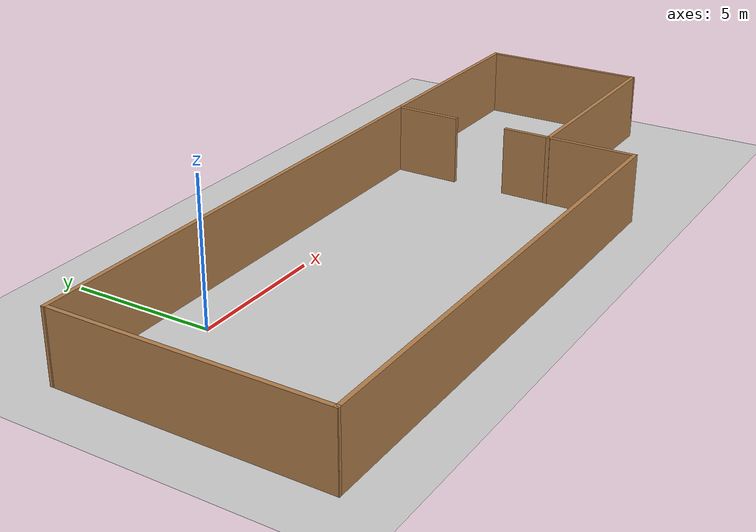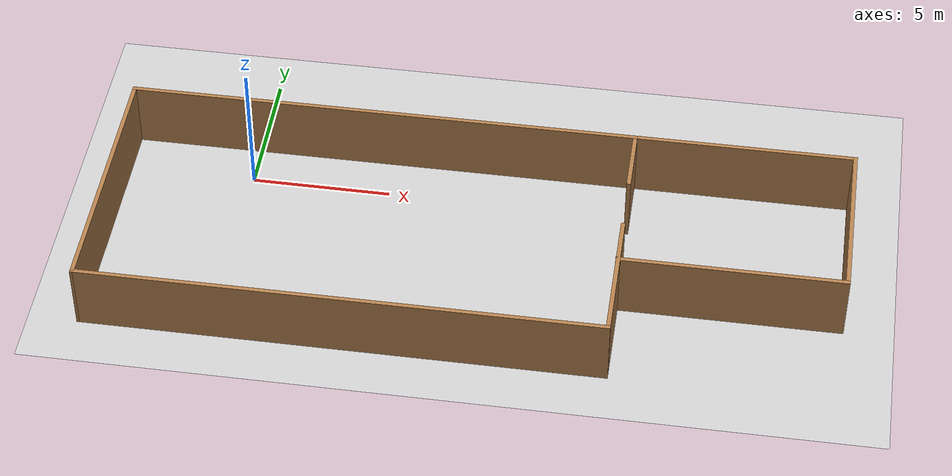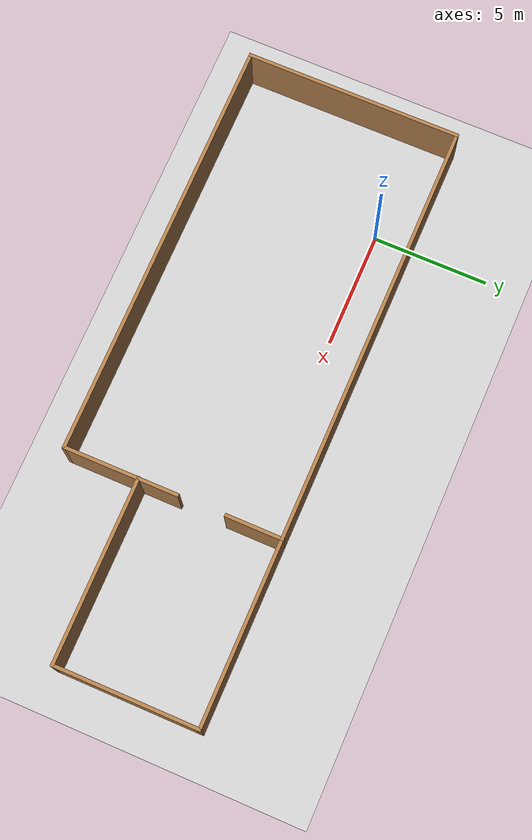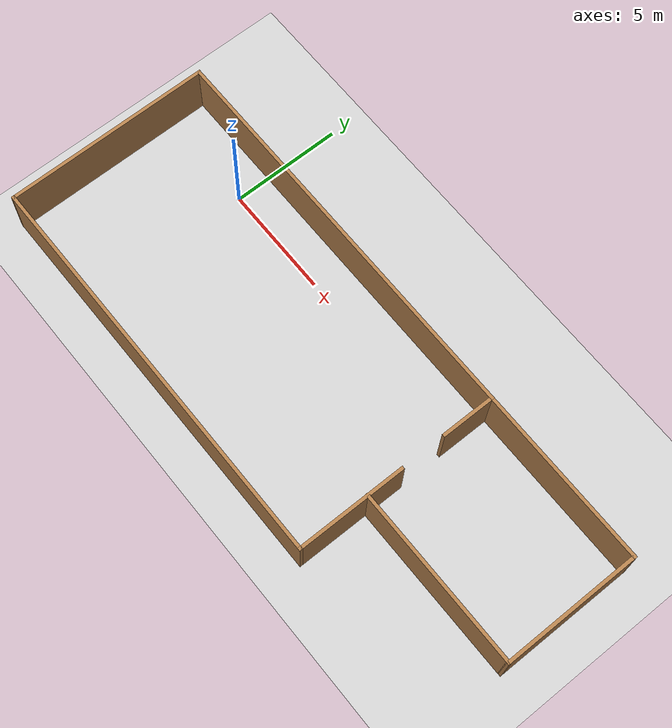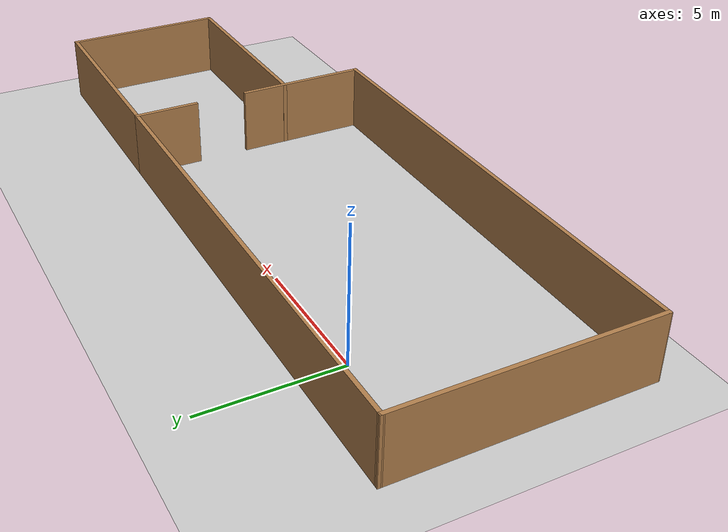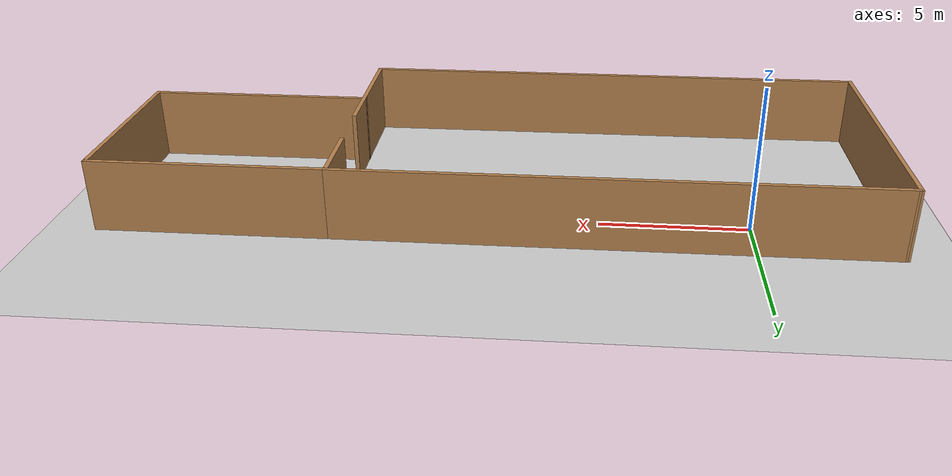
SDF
<sdf version="1.7">
 <world name="default">
  <light name="sun" type="directional">
   <pose>0 0 10 0 -0 0</pose>
   <diffuse>0.8 0.8 0.8 1</diffuse>
   <specular>0.2 0.2 0.2 1</specular>
   <attenuation>
    <range>1000</range>
    <constant>0.9</constant>
    <linear>0.01</linear>
    <quadratic>0.001</quadratic>
   </attenuation>
   <direction>-0.5 0.1 -0.9</direction>
   <spot><inner_angle>0</inner_angle><outer_angle>0</outer_angle><falloff>0</falloff></spot>
  </light>
  <model name="ground_plane">
   <static>1</static>
   <link name="link">
    <collision name="collision">
     <geometry><plane><normal>0 0 1</normal><size>100 100</size></plane></geometry>
     <surface>
      <contact><collide_bitmask>65535</collide_bitmask></contact>
      <friction><ode><mu>100</mu><mu2>50</mu2></ode></friction>
     </surface>
    </collision>
    <visual name="visual">
     <cast_shadows>0</cast_shadows>
     <geometry><plane><normal>0 0 1</normal><size>100 100</size></plane></geometry>
     <material>
      <script><uri>file://media/materials/scripts/gazebo.material</uri><name>Gazebo/Grey</name></script>
     </material>
    </visual>
   </link>
  </model>
  <gravity>0 0 -9.8</gravity>
  <magnetic_field>6e-06 2.3e-05 -4.2e-05</magnetic_field>
  <atmosphere type="adiabatic"/>
  <physics type="ode">
   <max_step_size>0.001</max_step_size>
   <real_time_factor>1</real_time_factor>
   <real_time_update_rate>1000</real_time_update_rate>
  </physics>
  <scene><ambient>0.4 0.4 0.4 1</ambient><background>0.7 0.7 0.7 1</background><shadows>1</shadows></scene>
  <spherical_coordinates>
   <surface_model>EARTH_WGS84</surface_model>
   <latitude_deg>0</latitude_deg>
   <longitude_deg>0</longitude_deg>
   <elevation>0</elevation>
   <heading_deg>0</heading_deg>
  </spherical_coordinates>
  <model name="ramon_world">
   <pose>8.46506 -2.88326 0 0 -0 0</pose>
   <link name="Wall_12">
    <collision name="Wall_12_Collision">
     <geometry><box><size>5 0.15 2.5</size></box></geometry>
     <pose>0 0 1.25 0 -0 0</pose>
    </collision>
    <visual name="Wall_12_Visual">
     <pose>0 0 1.25 0 -0 0</pose>
     <geometry><box><size>5 0.15 2.5</size></box></geometry>
     <material>
      <script><uri>file://media/materials/scripts/gazebo.material</uri><name>Gazebo/Wood</name></script>
      <ambient>1 1 1 1</ambient>
     </material>
     <meta><layer>0</layer></meta>
    </visual>
    <pose>5.26004 -2.38318 0 0 -0 -1.5708</pose>
   </link>
   <link name="Wall_13">
    <collision name="Wall_13_Collision">
     <geometry><box><size>18.5 0.15 2.5</size></box></geometry>
     <pose>0 0 1.25 0 -0 0</pose>
    </collision>
    <visual name="Wall_13_Visual">
     <pose>0 0 1.25 0 -0 0</pose>
     <geometry><box><size>18.5 0.15 2.5</size></box></geometry>
     <material>
      <script><uri>file://media/materials/scripts/gazebo.material</uri><name>Gazebo/Wood</name></script>
      <ambient>1 1 1 1</ambient>
     </material>
     <meta><layer>0</layer></meta>
    </visual>
    <pose>-3.91496 -4.80818 0 0 -0 3.14159</pose>
   </link>
   <link name="Wall_14">
    <collision name="Wall_14_Collision">
     <geometry><box><size>9.45001 0.15 2.5</size></box></geometry>
     <pose>0 0 1.25 0 -0 0</pose>
    </collision>
    <visual name="Wall_14_Visual">
     <pose>0 0 1.25 0 -0 0</pose>
     <geometry><box><size>9.45001 0.15 2.5</size></box></geometry>
     <material>
      <script><uri>file://media/materials/scripts/gazebo.material</uri><name>Gazebo/Wood</name></script>
      <ambient>1 1 1 1</ambient>
     </material>
     <meta><layer>0</layer></meta>
    </visual>
    <pose>-13.095 -0.158175 0 0 -0 1.57187</pose>
   </link>
   <link name="Wall_16">
    <collision name="Wall_16_Collision">
     <geometry><box><size>8 0.15 2.5</size></box></geometry>
     <pose>0 0 1.25 0 -0 0</pose>
    </collision>
    <visual name="Wall_16_Visual">
     <pose>0 0 1.25 0 -0 0</pose>
     <geometry><box><size>8 0.15 2.5</size></box></geometry>
     <material>
      <script><uri>file://media/materials/scripts/gazebo.material</uri><name>Gazebo/Wood</name></script>
      <ambient>1 1 1 1</ambient>
     </material>
     <meta><layer>0</layer></meta>
    </visual>
    <pose>9.17504 4.49183 0 0 -0 0</pose>
   </link>
   <link name="Wall_17">
    <collision name="Wall_17_Collision">
     <geometry><box><size>6.25 0.15 2.5</size></box></geometry>
     <pose>0 0 1.25 0 -0 0</pose>
    </collision>
    <visual name="Wall_17_Visual">
     <pose>0 0 1.25 0 -0 0</pose>
     <geometry><box><size>6.25 0.15 2.5</size></box></geometry>
     <material>
      <script><uri>file://media/materials/scripts/gazebo.material</uri><name>Gazebo/Wood</name></script>
      <ambient>1 1 1 1</ambient>
     </material>
     <meta><layer>0</layer></meta>
    </visual>
    <pose>13.1 1.44182 0 0 -0 -1.5708</pose>
   </link>
   <link name="Wall_20">
    <collision name="Wall_20_Collision">
     <geometry><box><size>8 0.15 2.5</size></box></geometry>
     <pose>0 0 1.25 0 -0 0</pose>
    </collision>
    <visual name="Wall_20_Visual">
     <pose>0 0 1.25 0 -0 0</pose>
     <geometry><box><size>8 0.15 2.5</size></box></geometry>
     <material>
      <script><uri>file://media/materials/scripts/gazebo.material</uri><name>Gazebo/Wood</name></script>
      <ambient>1 1 1 1</ambient>
     </material>
     <meta><layer>0</layer></meta>
    </visual>
    <pose>9.17504 -1.60817 0 0 -0 3.14159</pose>
   </link>
   <link name="Wall_8">
    <collision name="Wall_8_Collision">
     <geometry><box><size>18.5 0.15 2.5</size></box></geometry>
     <pose>0 0 1.25 0 -0 0</pose>
    </collision>
    <visual name="Wall_8_Visual">
     <pose>0 0 1.25 0 -0 0</pose>
     <geometry><box><size>18.5 0.15 2.5</size></box></geometry>
     <material>
      <script><uri>file://media/materials/scripts/gazebo.material</uri><name>Gazebo/Wood</name></script>
      <ambient>1 1 1 1</ambient>
     </material>
     <meta><layer>0</layer></meta>
    </visual>
    <pose>-3.92496 4.49183 0 0 -0 0</pose>
   </link>
   <link name="Wall_9">
    <collision name="Wall_9_Collision">
     <geometry><box><size>2.5 0.15 2.5</size></box></geometry>
     <pose>0 0 1.25 0 -0 0</pose>
    </collision>
    <visual name="Wall_9_Visual">
     <pose>0 0 1.25 0 -0 0</pose>
     <geometry><box><size>2.5 0.15 2.5</size></box></geometry>
     <material>
      <script><uri>file://media/materials/scripts/gazebo.material</uri><name>Gazebo/Wood</name></script>
      <ambient>1 1 1 1</ambient>
     </material>
     <meta><layer>0</layer></meta>
    </visual>
    <pose>5.25004 3.31683 0 0 -0 -1.5708</pose>
   </link>
   <static>1</static>
  </model>
 </world>
</sdf>
